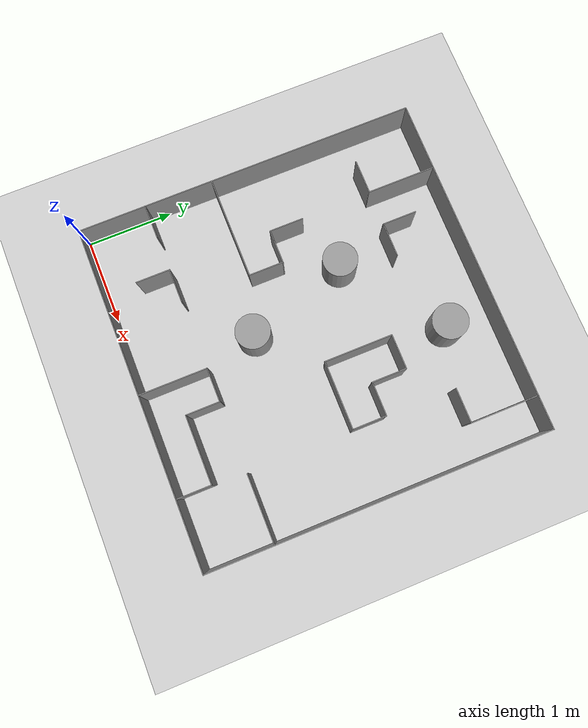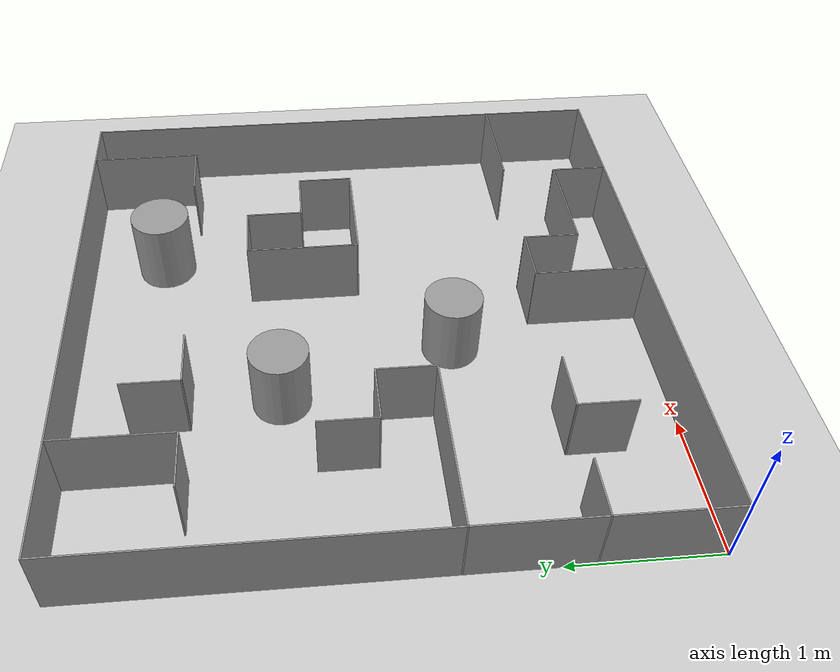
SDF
<sdf version="1.7">
 <world name="default">
  <light name="sun" type="directional">
   <pose>0 0 10 0 -0 0</pose>
   <diffuse>0.8 0.8 0.8 1</diffuse>
   <specular>0.2 0.2 0.2 1</specular>
   <attenuation>
    <range>1000</range>
    <constant>0.9</constant>
    <linear>0.01</linear>
    <quadratic>0.001</quadratic>
   </attenuation>
   <direction>-0.5 0.1 -0.9</direction>
   <spot><inner_angle>0</inner_angle><outer_angle>0</outer_angle><falloff>0</falloff></spot>
  </light>
  <model name="ground_plane">
   <static>1</static>
   <link name="link">
    <collision name="collision">
     <geometry><plane><normal>0 0 1</normal><size>100 100</size></plane></geometry>
     <surface>
      <contact><collide_bitmask>65535</collide_bitmask></contact>
      <friction><ode><mu>100</mu><mu2>50</mu2></ode></friction>
     </surface>
    </collision>
    <visual name="visual">
     <cast_shadows>0</cast_shadows>
     <geometry><plane><normal>0 0 1</normal><size>100 100</size></plane></geometry>
     <material>
      <script><uri>file://media/materials/scripts/gazebo.material</uri><name>Gazebo/Grey</name></script>
     </material>
    </visual>
   </link>
  </model>
  <gravity>0 0 -9.8</gravity>
  <magnetic_field>6e-06 2.3e-05 -4.2e-05</magnetic_field>
  <atmosphere type="adiabatic"/>
  <physics type="ode">
   <max_step_size>0.001</max_step_size>
   <real_time_factor>1</real_time_factor>
   <real_time_update_rate>1000</real_time_update_rate>
  </physics>
  <scene><ambient>0.4 0.4 0.4 1</ambient><background>0.7 0.7 0.7 1</background><shadows>1</shadows></scene>
  <spherical_coordinates>
   <surface_model>EARTH_WGS84</surface_model>
   <latitude_deg>0</latitude_deg>
   <longitude_deg>0</longitude_deg>
   <elevation>0</elevation>
   <heading_deg>0</heading_deg>
  </spherical_coordinates>
  <model name="mobile_robots_map">
   <pose>2 2 0 0 -0 0</pose>
   <link name="Wall_0">
    <collision name="Wall_0_Collision">
     <geometry><box><size>4 0.01 0.5</size></box></geometry>
     <pose>0 0 0.25 0 -0 0</pose>
    </collision>
    <visual name="Wall_0_Visual">
     <pose>0 0 0.25 0 -0 0</pose>
     <geometry><box><size>4 0.01 0.5</size></box></geometry>
     <material>
      <script><uri>file://media/materials/scripts/gazebo.material</uri><name>Gazebo/Grey</name></script>
      <ambient>1 1 1 1</ambient>
     </material>
     <meta><layer>0</layer></meta>
    </visual>
    <pose>0 -1.995 0 0 -0 0</pose>
   </link>
   <link name="Wall_11">
    <collision name="Wall_11_Collision">
     <geometry><box><size>4 0.01 0.5</size></box></geometry>
     <pose>0 0 0.25 0 -0 0</pose>
    </collision>
    <visual name="Wall_11_Visual">
     <pose>0 0 0.25 0 -0 0</pose>
     <geometry><box><size>4 0.01 0.5</size></box></geometry>
     <material>
      <script><uri>file://media/materials/scripts/gazebo.material</uri><name>Gazebo/Grey</name></script>
      <ambient>1 1 1 1</ambient>
     </material>
     <meta><layer>0</layer></meta>
    </visual>
    <pose>0 1.995 0 0 -0 0</pose>
   </link>
   <link name="Wall_13">
    <collision name="Wall_13_Collision">
     <geometry><box><size>0.8 0.01 0.5</size></box></geometry>
     <pose>0 0 0.25 0 -0 0</pose>
    </collision>
    <visual name="Wall_13_Visual">
     <pose>0 0 0.25 0 -0 0</pose>
     <geometry><box><size>0.8 0.01 0.5</size></box></geometry>
     <material>
      <script><uri>file://media/materials/scripts/gazebo.material</uri><name>Gazebo/Grey</name></script>
      <ambient>1 1 1 1</ambient>
     </material>
     <meta><layer>0</layer></meta>
    </visual>
    <pose>-0.005 -1.6 0 0 -0 1.5708</pose>
   </link>
   <link name="Wall_15">
    <collision name="Wall_15_Collision">
     <geometry><box><size>0.4 0.01 0.5</size></box></geometry>
     <pose>0 0 0.25 0 -0 0</pose>
    </collision>
    <visual name="Wall_15_Visual">
     <pose>0 0 0.25 0 -0 0</pose>
     <geometry><box><size>0.4 0.01 0.5</size></box></geometry>
     <material>
      <script><uri>file://media/materials/scripts/gazebo.material</uri><name>Gazebo/Grey</name></script>
      <ambient>1 1 1 1</ambient>
     </material>
     <meta><layer>0</layer></meta>
    </visual>
    <pose>0.19 -1.205 0 0 -0 0</pose>
   </link>
   <link name="Wall_17">
    <collision name="Wall_17_Collision">
     <geometry><box><size>0.4 0.01 0.5</size></box></geometry>
     <pose>0 0 0.25 0 -0 0</pose>
    </collision>
    <visual name="Wall_17_Visual">
     <pose>0 0 0.25 0 -0 0</pose>
     <geometry><box><size>0.4 0.01 0.5</size></box></geometry>
     <material>
      <script><uri>file://media/materials/scripts/gazebo.material</uri><name>Gazebo/Grey</name></script>
      <ambient>1 1 1 1</ambient>
     </material>
     <meta><layer>0</layer></meta>
    </visual>
    <pose>0.385 -1.4 0 0 -0 -1.5708</pose>
   </link>
   <link name="Wall_19">
    <collision name="Wall_19_Collision">
     <geometry><box><size>0.8 0.01 0.5</size></box></geometry>
     <pose>0 0 0.25 0 -0 0</pose>
    </collision>
    <visual name="Wall_19_Visual">
     <pose>0 0 0.25 0 -0 0</pose>
     <geometry><box><size>0.8 0.01 0.5</size></box></geometry>
     <material>
      <script><uri>file://media/materials/scripts/gazebo.material</uri><name>Gazebo/Grey</name></script>
      <ambient>1 1 1 1</ambient>
     </material>
     <meta><layer>0</layer></meta>
    </visual>
    <pose>0.78 -1.595 0 0 -0 0</pose>
   </link>
   <link name="Wall_21">
    <collision name="Wall_21_Collision">
     <geometry><box><size>0.4 0.01 0.5</size></box></geometry>
     <pose>0 0 0.25 0 -0 0</pose>
    </collision>
    <visual name="Wall_21_Visual">
     <pose>0 0 0.25 0 -0 0</pose>
     <geometry><box><size>0.4 0.01 0.5</size></box></geometry>
     <material>
      <script><uri>file://media/materials/scripts/gazebo.material</uri><name>Gazebo/Grey</name></script>
      <ambient>1 1 1 1</ambient>
     </material>
     <meta><layer>0</layer></meta>
    </visual>
    <pose>1.175 -1.79 0 0 -0 -1.5708</pose>
   </link>
   <link name="Wall_23">
    <collision name="Wall_23_Collision">
     <geometry><box><size>0.8 0.01 0.5</size></box></geometry>
     <pose>0 0 0.25 0 -0 0</pose>
    </collision>
    <visual name="Wall_23_Visual">
     <pose>0 0 0.25 0 -0 0</pose>
     <geometry><box><size>0.8 0.01 0.5</size></box></geometry>
     <material>
      <script><uri>file://media/materials/scripts/gazebo.material</uri><name>Gazebo/Grey</name></script>
      <ambient>1 1 1 1</ambient>
     </material>
     <meta><layer>0</layer></meta>
    </visual>
    <pose>1.6 -1.205 0 0 -0 0</pose>
   </link>
   <link name="Wall_25">
    <collision name="Wall_25_Collision">
     <geometry><box><size>0.4 0.01 0.5</size></box></geometry>
     <pose>0 0 0.25 0 -0 0</pose>
    </collision>
    <visual name="Wall_25_Visual">
     <pose>0 0 0.25 0 -0 0</pose>
     <geometry><box><size>0.4 0.01 0.5</size></box></geometry>
     <material>
      <script><uri>file://media/materials/scripts/gazebo.material</uri><name>Gazebo/Grey</name></script>
      <ambient>1 1 1 1</ambient>
     </material>
     <meta><layer>0</layer></meta>
    </visual>
    <pose>-1.8 -1.205 0 0 -0 0</pose>
   </link>
   <link name="Wall_27">
    <collision name="Wall_27_Collision">
     <geometry><box><size>0.4 0.01 0.5</size></box></geometry>
     <pose>0 0 0.25 0 -0 0</pose>
    </collision>
    <visual name="Wall_27_Visual">
     <pose>0 0 0.25 0 -0 0</pose>
     <geometry><box><size>0.4 0.01 0.5</size></box></geometry>
     <material>
      <script><uri>file://media/materials/scripts/gazebo.material</uri><name>Gazebo/Grey</name></script>
      <ambient>1 1 1 1</ambient>
     </material>
     <meta><layer>0</layer></meta>
    </visual>
    <pose>-1 -1.205 0 0 -0 0</pose>
   </link>
   <link name="Wall_29">
    <collision name="Wall_29_Collision">
     <geometry><box><size>0.4 0.01 0.5</size></box></geometry>
     <pose>0 0 0.25 0 -0 0</pose>
    </collision>
    <visual name="Wall_29_Visual">
     <pose>0 0 0.25 0 -0 0</pose>
     <geometry><box><size>0.4 0.01 0.5</size></box></geometry>
     <material>
      <script><uri>file://media/materials/scripts/gazebo.material</uri><name>Gazebo/Grey</name></script>
      <ambient>1 1 1 1</ambient>
     </material>
     <meta><layer>0</layer></meta>
    </visual>
    <pose>-1.195 -1.4 0 0 -0 -1.5708</pose>
   </link>
   <link name="Wall_5">
    <collision name="Wall_5_Collision">
     <geometry><box><size>4 0.01 0.5</size></box></geometry>
     <pose>0 0 0.25 0 -0 0</pose>
    </collision>
    <visual name="Wall_5_Visual">
     <pose>0 0 0.25 0 -0 0</pose>
     <geometry><box><size>4 0.01 0.5</size></box></geometry>
     <material>
      <script><uri>file://media/materials/scripts/gazebo.material</uri><name>Gazebo/Grey</name></script>
      <ambient>1 1 1 1</ambient>
     </material>
     <meta><layer>0</layer></meta>
    </visual>
    <pose>1.995 0 0 0 -0 1.5708</pose>
   </link>
   <link name="Wall_9">
    <collision name="Wall_9_Collision">
     <geometry><box><size>4 0.01 0.5</size></box></geometry>
     <pose>0 0 0.25 0 -0 0</pose>
    </collision>
    <visual name="Wall_9_Visual">
     <pose>0 0 0.25 0 -0 0</pose>
     <geometry><box><size>4 0.01 0.5</size></box></geometry>
     <material>
      <script><uri>file://media/materials/scripts/gazebo.material</uri><name>Gazebo/Grey</name></script>
      <ambient>1 1 1 1</ambient>
     </material>
     <meta><layer>0</layer></meta>
    </visual>
    <pose>-1.995 0 0 0 -0 1.5708</pose>
   </link>
   <static>1</static>
  </model>
  <model name="mobile_robots2">
   <pose>1.6 2 0 0 -0 0</pose>
   <link name="Wall_10">
    <collision name="Wall_10_Collision">
     <geometry><box><size>0.4 0.01 0.5</size></box></geometry>
     <pose>0 0 0.25 0 -0 0</pose>
    </collision>
    <visual name="Wall_10_Visual">
     <pose>0 0 0.25 0 -0 0</pose>
     <geometry><box><size>0.4 0.01 0.5</size></box></geometry>
     <material>
      <script><uri>file://media/materials/scripts/gazebo.material</uri><name>Gazebo/Grey</name></script>
      <ambient>1 1 1 1</ambient>
     </material>
     <meta><layer>0</layer></meta>
    </visual>
    <pose>-0.6 -0.005 0 0 -0 0</pose>
   </link>
   <link name="Wall_12">
    <collision name="Wall_12_Collision">
     <geometry><box><size>0.4 0.01 0.5</size></box></geometry>
     <pose>0 0 0.25 0 -0 0</pose>
    </collision>
    <visual name="Wall_12_Visual">
     <pose>0 0 0.25 0 -0 0</pose>
     <geometry><box><size>0.4 0.01 0.5</size></box></geometry>
     <material>
      <script><uri>file://media/materials/scripts/gazebo.material</uri><name>Gazebo/Grey</name></script>
      <ambient>1 1 1 1</ambient>
     </material>
     <meta><layer>0</layer></meta>
    </visual>
    <pose>-0.795 0.19 0 0 -0 1.5708</pose>
   </link>
   <link name="Wall_14">
    <collision name="Wall_14_Collision">
     <geometry><box><size>0.8 0.01 0.5</size></box></geometry>
     <pose>0 0 0.25 0 -0 0</pose>
    </collision>
    <visual name="Wall_14_Visual">
     <pose>0 0 0.25 0 -0 0</pose>
     <geometry><box><size>0.8 0.01 0.5</size></box></geometry>
     <material>
      <script><uri>file://media/materials/scripts/gazebo.material</uri><name>Gazebo/Grey</name></script>
      <ambient>1 1 1 1</ambient>
     </material>
     <meta><layer>0</layer></meta>
    </visual>
    <pose>0.805 0.4 0 0 -0 1.5708</pose>
   </link>
   <link name="Wall_16">
    <collision name="Wall_16_Collision">
     <geometry><box><size>0.8 0.01 0.5</size></box></geometry>
     <pose>0 0 0.25 0 -0 0</pose>
    </collision>
    <visual name="Wall_16_Visual">
     <pose>0 0 0.25 0 -0 0</pose>
     <geometry><box><size>0.8 0.01 0.5</size></box></geometry>
     <material>
      <script><uri>file://media/materials/scripts/gazebo.material</uri><name>Gazebo/Grey</name></script>
      <ambient>1 1 1 1</ambient>
     </material>
     <meta><layer>0</layer></meta>
    </visual>
    <pose>1.2 0.005 0 0 -0 0</pose>
   </link>
   <link name="Wall_20">
    <collision name="Wall_20_Collision">
     <geometry><box><size>0.4 0.01 0.5</size></box></geometry>
     <pose>0 0 0.25 0 -0 0</pose>
    </collision>
    <visual name="Wall_20_Visual">
     <pose>0 0 0.25 0 -0 0</pose>
     <geometry><box><size>0.4 0.01 0.5</size></box></geometry>
     <material>
      <script><uri>file://media/materials/scripts/gazebo.material</uri><name>Gazebo/Grey</name></script>
      <ambient>1 1 1 1</ambient>
     </material>
     <meta><layer>0</layer></meta>
    </visual>
    <pose>1.595 0.2 0 0 -0 1.5708</pose>
   </link>
   <link name="Wall_28">
    <collision name="Wall_28_Collision">
     <geometry><box><size>0.4 0.01 0.5</size></box></geometry>
     <pose>0 0 0.25 0 -0 0</pose>
    </collision>
    <visual name="Wall_28_Visual">
     <pose>0 0 0.25 0 -0 0</pose>
     <geometry><box><size>0.4 0.01 0.5</size></box></geometry>
     <material>
      <script><uri>file://media/materials/scripts/gazebo.material</uri><name>Gazebo/Grey</name></script>
      <ambient>1 1 1 1</ambient>
     </material>
     <meta><layer>0</layer></meta>
    </visual>
    <pose>1.4 0.395 0 0 -0 0</pose>
   </link>
   <link name="Wall_30">
    <collision name="Wall_30_Collision">
     <geometry><box><size>0.4 0.01 0.5</size></box></geometry>
     <pose>0 0 0.25 0 -0 0</pose>
    </collision>
    <visual name="Wall_30_Visual">
     <pose>0 0 0.25 0 -0 0</pose>
     <geometry><box><size>0.4 0.01 0.5</size></box></geometry>
     <material>
      <script><uri>file://media/materials/scripts/gazebo.material</uri><name>Gazebo/Grey</name></script>
      <ambient>1 1 1 1</ambient>
     </material>
     <meta><layer>0</layer></meta>
    </visual>
    <pose>1 0.795 0 0 -0 0</pose>
   </link>
   <link name="Wall_32">
    <collision name="Wall_32_Collision">
     <geometry><box><size>0.41 0.01 0.5</size></box></geometry>
     <pose>0 0 0.25 0 -0 0</pose>
    </collision>
    <visual name="Wall_32_Visual">
     <pose>0 0 0.25 0 -0 0</pose>
     <geometry><box><size>0.41 0.01 0.5</size></box></geometry>
     <material>
      <script><uri>file://media/materials/scripts/gazebo.material</uri><name>Gazebo/Grey</name></script>
      <ambient>1 1 1 1</ambient>
     </material>
     <meta><layer>0</layer></meta>
    </visual>
    <pose>1.205 0.595 0 0 -0 1.5708</pose>
   </link>
   <link name="Wall_36">
    <collision name="Wall_36_Collision">
     <geometry><box><size>0.4 0.01 0.5</size></box></geometry>
     <pose>0 0 0.25 0 -0 0</pose>
    </collision>
    <visual name="Wall_36_Visual">
     <pose>0 0 0.25 0 -0 0</pose>
     <geometry><box><size>0.4 0.01 0.5</size></box></geometry>
     <material>
      <script><uri>file://media/materials/scripts/gazebo.material</uri><name>Gazebo/Grey</name></script>
      <ambient>1 1 1 1</ambient>
     </material>
     <meta><layer>0</layer></meta>
    </visual>
    <pose>-1 1.205 0 0 -0 0</pose>
   </link>
   <link name="Wall_38">
    <collision name="Wall_38_Collision">
     <geometry><box><size>0.8 0.01 0.5</size></box></geometry>
     <pose>0 0 0.25 0 -0 0</pose>
    </collision>
    <visual name="Wall_38_Visual">
     <pose>0 0 0.25 0 -0 0</pose>
     <geometry><box><size>0.8 0.01 0.5</size></box></geometry>
     <material>
      <script><uri>file://media/materials/scripts/gazebo.material</uri><name>Gazebo/Grey</name></script>
      <ambient>1 1 1 1</ambient>
     </material>
     <meta><layer>0</layer></meta>
    </visual>
    <pose>-0.805 1.6 0 0 -0 1.5708</pose>
   </link>
   <link name="Wall_4">
    <collision name="Wall_4_Collision">
     <geometry><box><size>1.2 0.01 0.5</size></box></geometry>
     <pose>0 0 0.25 0 -0 0</pose>
    </collision>
    <visual name="Wall_4_Visual">
     <pose>0 0 0.25 0 -0 0</pose>
     <geometry><box><size>1.2 0.01 0.5</size></box></geometry>
     <material>
      <script><uri>file://media/materials/scripts/gazebo.material</uri><name>Gazebo/Grey</name></script>
      <ambient>1 1 1 1</ambient>
     </material>
     <meta><layer>0</layer></meta>
    </visual>
    <pose>-1 -0.405 0 0 -0 0</pose>
   </link>
   <link name="Wall_6">
    <collision name="Wall_6_Collision">
     <geometry><box><size>0.4 0.01 0.5</size></box></geometry>
     <pose>0 0 0.25 0 -0 0</pose>
    </collision>
    <visual name="Wall_6_Visual">
     <pose>0 0 0.25 0 -0 0</pose>
     <geometry><box><size>0.4 0.01 0.5</size></box></geometry>
     <material>
      <script><uri>file://media/materials/scripts/gazebo.material</uri><name>Gazebo/Grey</name></script>
      <ambient>1 1 1 1</ambient>
     </material>
     <meta><layer>0</layer></meta>
    </visual>
    <pose>-0.405 -0.21 0 0 -0 1.5708</pose>
   </link>
   <static>1</static>
  </model>
  <model name="mobile3">
   <pose>1.805 2 0 0 -0 0</pose>
   <link name="Wall_0">
    <collision name="Wall_0_Collision">
     <geometry><box><size>0.4 0.01 0.5</size></box></geometry>
     <pose>0 0 0.25 0 -0 0</pose>
    </collision>
    <visual name="Wall_0_Visual">
     <pose>0 0 0.25 0 -0 0</pose>
     <geometry><box><size>0.4 0.01 0.5</size></box></geometry>
     <material>
      <script><uri>file://media/materials/scripts/gazebo.material</uri><name>Gazebo/Grey</name></script>
      <ambient>1 1 1 1</ambient>
     </material>
     <meta><layer>0</layer></meta>
    </visual>
    <pose>-0.6 1.4 0 0 -0 1.5708</pose>
   </link>
   <link name="Wall_2">
    <collision name="Wall_2_Collision">
     <geometry><box><size>0.4 0.01 0.5</size></box></geometry>
     <pose>0 0 0.25 0 -0 0</pose>
    </collision>
    <visual name="Wall_2_Visual">
     <pose>0 0 0.25 0 -0 0</pose>
     <geometry><box><size>0.4 0.01 0.5</size></box></geometry>
     <material>
      <script><uri>file://media/materials/scripts/gazebo.material</uri><name>Gazebo/Grey</name></script>
      <ambient>1 1 1 1</ambient>
     </material>
     <meta><layer>0</layer></meta>
    </visual>
    <pose>-0.405 1.205 0 0 -0 0</pose>
   </link>
   <link name="Wall_4">
    <collision name="Wall_4_Collision">
     <geometry><box><size>0.8 0.01 0.5</size></box></geometry>
     <pose>0 0 0.25 0 -0 0</pose>
    </collision>
    <visual name="Wall_4_Visual">
     <pose>0 0 0.25 0 -0 0</pose>
     <geometry><box><size>0.8 0.01 0.5</size></box></geometry>
     <material>
      <script><uri>file://media/materials/scripts/gazebo.material</uri><name>Gazebo/Grey</name></script>
      <ambient>1 1 1 1</ambient>
     </material>
     <meta><layer>0</layer></meta>
    </visual>
    <pose>1.8 1.6 0 0 -0 1.5708</pose>
   </link>
   <link name="Wall_6">
    <collision name="Wall_6_Collision">
     <geometry><box><size>0.4 0.01 0.5</size></box></geometry>
     <pose>0 0 0.25 0 -0 0</pose>
    </collision>
    <visual name="Wall_6_Visual">
     <pose>0 0 0.25 0 -0 0</pose>
     <geometry><box><size>0.4 0.01 0.5</size></box></geometry>
     <material>
      <script><uri>file://media/materials/scripts/gazebo.material</uri><name>Gazebo/Grey</name></script>
      <ambient>1 1 1 1</ambient>
     </material>
     <meta><layer>0</layer></meta>
    </visual>
    <pose>1.595 1.205 0 0 -0 0</pose>
   </link>
   <static>1</static>
  </model>
  <model name="unit_cylinder">
   <link name="link">
    <inertial>
     <mass>1</mass>
     <inertia><ixx>0.145833</ixx><ixy>0</ixy><ixz>0</ixz><iyy>0.145833</iyy><iyz>0</iyz><izz>0.125</izz></inertia>
    </inertial>
    <visual name="visual">
     <geometry><cylinder><radius>0.2</radius><length>0.5</length></cylinder></geometry>
     <material>
      <script><name>Gazebo/Grey</name><uri>file://media/materials/scripts/gazebo.material</uri></script>
      <shader type="pixel"><normal_map>__default__</normal_map></shader>
      <ambient>0.3 0.3 0.3 1</ambient>
      <diffuse>0.7 0.7 0.7 1</diffuse>
      <specular>0.01 0.01 0.01 1</specular>
      <emissive>0 0 0 1</emissive>
     </material>
    </visual>
    <collision name="collision">
     <geometry><cylinder><radius>0.2</radius><length>0.5</length></cylinder></geometry>
     <surface>
      <friction>
       <ode><mu>1</mu><mu2>1</mu2><fdir1>0 0 0</fdir1><slip1>0</slip1><slip2>0</slip2></ode>
       <torsional>
        <coefficient>1</coefficient>
        <patch_radius>0</patch_radius>
        <surface_radius>0</surface_radius>
        <use_patch_radius>1</use_patch_radius>
        <ode><slip>0</slip></ode>
       </torsional>
      </friction>
      <bounce><restitution_coefficient>0</restitution_coefficient><threshold>1e+06</threshold></bounce>
      <contact>
       <collide_without_contact>0</collide_without_contact>
       <collide_without_contact_bitmask>1</collide_without_contact_bitmask>
       <collide_bitmask>1</collide_bitmask>
       <ode>
        <soft_cfm>0</soft_cfm>
        <soft_erp>0.2</soft_erp>
        <kp>1e+13</kp>
        <kd>1</kd>
        <max_vel>0.01</max_vel>
        <min_depth>0</min_depth>
       </ode>
       <bullet>
        <split_impulse>1</split_impulse>
        <split_impulse_penetration_threshold>-0.01</split_impulse_penetration_threshold>
        <soft_cfm>0</soft_cfm>
        <soft_erp>0.2</soft_erp>
        <kp>1e+13</kp>
        <kd>1</kd>
       </bullet>
      </contact>
     </surface>
    </collision>
   </link>
   <static>0</static>
   <pose>2.53271 3.38976 0.5 0 -0 0</pose>
  </model>
  <model name="unit_cylinder2">
   <link name="link">
    <inertial>
     <mass>1</mass>
     <inertia><ixx>0.145833</ixx><ixy>0</ixy><ixz>0</ixz><iyy>0.145833</iyy><iyz>0</iyz><izz>0.125</izz></inertia>
    </inertial>
    <visual name="visual">
     <geometry><cylinder><radius>0.2</radius><length>0.5</length></cylinder></geometry>
     <material>
      <script><name>Gazebo/Grey</name><uri>file://media/materials/scripts/gazebo.material</uri></script>
      <shader type="pixel"><normal_map>__default__</normal_map></shader>
      <ambient>0.3 0.3 0.3 1</ambient>
      <diffuse>0.7 0.7 0.7 1</diffuse>
      <specular>0.01 0.01 0.01 1</specular>
      <emissive>0 0 0 1</emissive>
     </material>
    </visual>
    <collision name="collision">
     <geometry><cylinder><radius>0.2</radius><length>0.5</length></cylinder></geometry>
     <surface>
      <friction>
       <ode><mu>1</mu><mu2>1</mu2><fdir1>0 0 0</fdir1><slip1>0</slip1><slip2>0</slip2></ode>
       <torsional>
        <coefficient>1</coefficient>
        <patch_radius>0</patch_radius>
        <surface_radius>0</surface_radius>
        <use_patch_radius>1</use_patch_radius>
        <ode><slip>0</slip></ode>
       </torsional>
      </friction>
      <bounce><restitution_coefficient>0</restitution_coefficient><threshold>1e+06</threshold></bounce>
      <contact>
       <collide_without_contact>0</collide_without_contact>
       <collide_without_contact_bitmask>1</collide_without_contact_bitmask>
       <collide_bitmask>1</collide_bitmask>
       <ode>
        <soft_cfm>0</soft_cfm>
        <soft_erp>0.2</soft_erp>
        <kp>1e+13</kp>
        <kd>1</kd>
        <max_vel>0.01</max_vel>
        <min_depth>0</min_depth>
       </ode>
       <bullet>
        <split_impulse>1</split_impulse>
        <split_impulse_penetration_threshold>-0.01</split_impulse_penetration_threshold>
        <soft_cfm>0</soft_cfm>
        <soft_erp>0.2</soft_erp>
        <kp>1e+13</kp>
        <kd>1</kd>
       </bullet>
      </contact>
     </surface>
    </collision>
   </link>
   <static>0</static>
   <pose>1.4 2.6 0.25 0 -0 0</pose>
  </model>
  <model name="unit_cylinde3">
   <link name="link">
    <inertial>
     <mass>1</mass>
     <inertia><ixx>0.145833</ixx><ixy>0</ixy><ixz>0</ixz><iyy>0.145833</iyy><iyz>0</iyz><izz>0.125</izz></inertia>
    </inertial>
    <visual name="visual">
     <geometry><cylinder><radius>0.2</radius><length>0.5</length></cylinder></geometry>
     <material>
      <script><name>Gazebo/Grey</name><uri>file://media/materials/scripts/gazebo.material</uri></script>
      <shader type="pixel"><normal_map>__default__</normal_map></shader>
      <ambient>0.3 0.3 0.3 1</ambient>
      <diffuse>0.7 0.7 0.7 1</diffuse>
      <specular>0.01 0.01 0.01 1</specular>
      <emissive>0 0 0 1</emissive>
     </material>
    </visual>
    <collision name="collision">
     <geometry><cylinder><radius>0.2</radius><length>0.5</length></cylinder></geometry>
     <surface>
      <friction>
       <ode><mu>1</mu><mu2>1</mu2><fdir1>0 0 0</fdir1><slip1>0</slip1><slip2>0</slip2></ode>
       <torsional>
        <coefficient>1</coefficient>
        <patch_radius>0</patch_radius>
        <surface_radius>0</surface_radius>
        <use_patch_radius>1</use_patch_radius>
        <ode><slip>0</slip></ode>
       </torsional>
      </friction>
      <bounce><restitution_coefficient>0</restitution_coefficient><threshold>1e+06</threshold></bounce>
      <contact>
       <collide_without_contact>0</collide_without_contact>
       <collide_without_contact_bitmask>1</collide_without_contact_bitmask>
       <collide_bitmask>1</collide_bitmask>
       <ode>
        <soft_cfm>0</soft_cfm>
        <soft_erp>0.2</soft_erp>
        <kp>1e+13</kp>
        <kd>1</kd>
        <max_vel>0.01</max_vel>
        <min_depth>0</min_depth>
       </ode>
       <bullet>
        <split_impulse>1</split_impulse>
        <split_impulse_penetration_threshold>-0.01</split_impulse_penetration_threshold>
        <soft_cfm>0</soft_cfm>
        <soft_erp>0.2</soft_erp>
        <kp>1e+13</kp>
        <kd>1</kd>
       </bullet>
      </contact>
     </surface>
    </collision>
   </link>
   <static>0</static>
   <pose>1.80 1.4 0.25 0 -0 0</pose>
  </model>
 </world>
</sdf>
